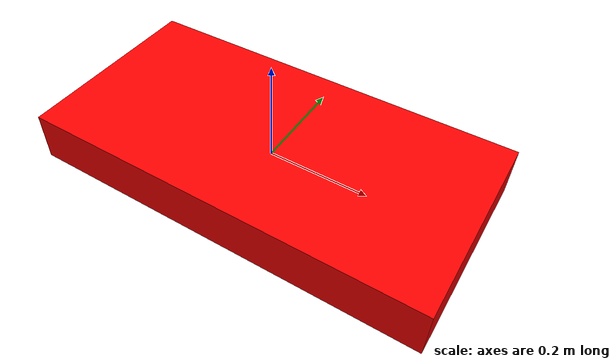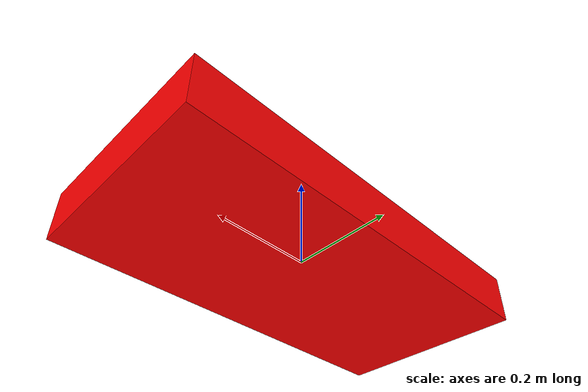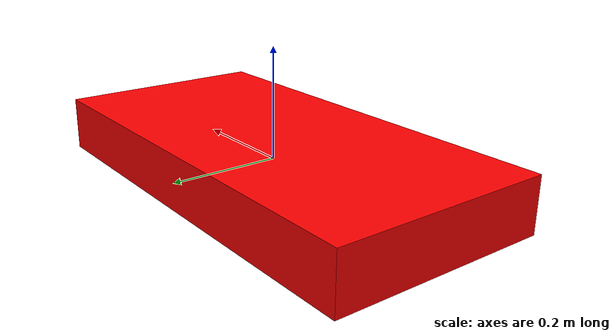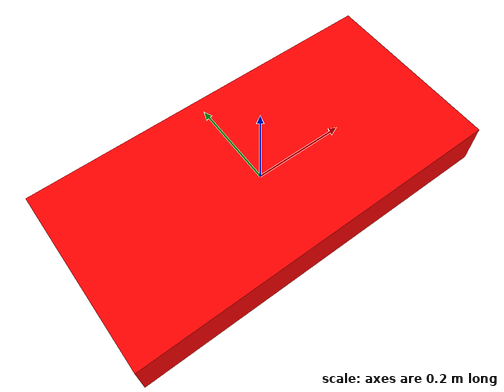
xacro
<?xml version="1.0"?>

<robot name="box_robot" xmlns:xacro="http://www.ros.org/wiki/xacro">

<xacro:property name="M_PI" value="3.1415926535897931"/>
<xacro:macro name="aha">
  <link name='base_link'>
    <collision>
      <geometry>
        <box size="0.8 0.4 0.1"/>
      </geometry>
    </collision>

    <visual>
      <geometry>
        <box size="0.8 0.4 0.1"/>
      </geometry>
      <material name="red">
        <color rgba="1 0 0 0"/>
      </material>
    </visual>

  </link>

</xacro:macro>

<xacro:aha />
<gazebo reference="base_link">
    <material>Gazebo/Red</material>
    <mu1>1000.0</mu1>
    <mu2>1000.0</mu2>
    <kp>10000000.0</kp>
    <kd>1.0</kd>
    <selfCollide>true</selfCollide>
  </gazebo>

</robot>
